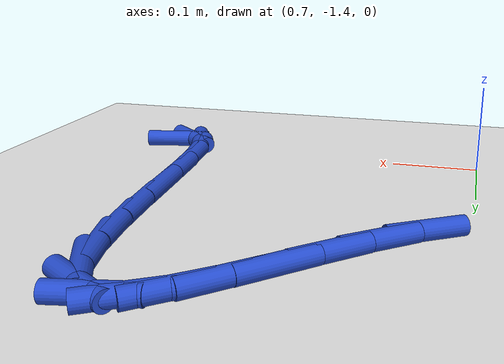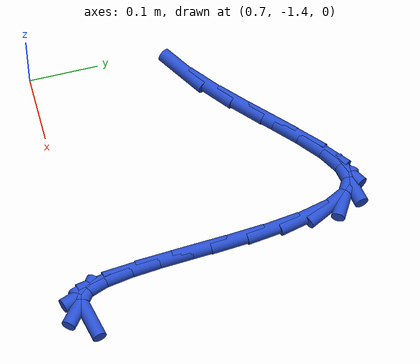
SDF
<sdf version="1.6">
 <world name="default">
  <model name="ground_plane">
   <static>1</static>
   <link name="link">
    <collision name="collision">
     <geometry><plane><normal>0 0 1</normal><size>100 100</size></plane></geometry>
     <surface><friction><ode><mu>100</mu><mu2>50</mu2></ode></friction></surface>
    </collision>
    <visual name="visual">
     <cast_shadows>0</cast_shadows>
     <geometry><plane><normal>0 0 1</normal><size>100 100</size></plane></geometry>
     <material>
      <script><uri>file://media/materials/scripts/gazebo.material</uri><name>Gazebo/WhiteGlow</name></script>
     </material>
    </visual>
   </link>
  </model>
  <model name="line">
   <link name="link_175">
    <pose>1.0909737369133736 -1.4066409125415156 0.01 0 1.57 0.20640165686629325</pose>
    <collision name="collision">
     <geometry><cylinder><radius>0.01</radius><length>0.08</length></cylinder></geometry>
    </collision>
    <visual name="visual">
     <material>
      <script><name>Gazebo/Blue</name><uri>file://media/materials/scripts/gazebo.material</uri></script>
     </material>
     <geometry><cylinder><radius>0.01</radius><length>0.08</length></cylinder></geometry>
    </visual>
   </link>
   <link name="link_176">
    <pose>1.071858057479476 -1.4106434203361446 0.01 0 1.57 -0.6833178603424117</pose>
    <collision name="collision">
     <geometry><cylinder><radius>0.01</radius><length>0.08</length></cylinder></geometry>
    </collision>
    <visual name="visual">
     <material>
      <script><name>Gazebo/Blue</name><uri>file://media/materials/scripts/gazebo.material</uri></script>
     </material>
     <geometry><cylinder><radius>0.01</radius><length>0.08</length></cylinder></geometry>
    </visual>
   </link>
   <link name="link_177">
    <pose>1.0574892772879605 -1.3989448814129524 0.01 0 1.57 -1.2158128619594564</pose>
    <collision name="collision">
     <geometry><cylinder><radius>0.01</radius><length>0.08</length></cylinder></geometry>
    </collision>
    <visual name="visual">
     <material>
      <script><name>Gazebo/Blue</name><uri>file://media/materials/scripts/gazebo.material</uri></script>
     </material>
     <geometry><cylinder><radius>0.01</radius><length>0.08</length></cylinder></geometry>
    </visual>
   </link>
   <link name="link_178">
    <pose>1.0475028477304005 -1.3720045037988085 0.01 0 1.57 -1.4010637667459271</pose>
    <collision name="collision">
     <geometry><cylinder><radius>0.01</radius><length>0.08</length></cylinder></geometry>
    </collision>
    <visual name="visual">
     <material>
      <script><name>Gazebo/Blue</name><uri>file://media/materials/scripts/gazebo.material</uri></script>
     </material>
     <geometry><cylinder><radius>0.01</radius><length>0.08</length></cylinder></geometry>
    </visual>
   </link>
   <link name="link_179">
    <pose>1.0408439246545904 -1.3331501203652198 0.01 0 1.57 -1.4779076347736662</pose>
    <collision name="collision">
     <geometry><cylinder><radius>0.01</radius><length>0.08</length></cylinder></geometry>
    </collision>
    <visual name="visual">
     <material>
      <script><name>Gazebo/Blue</name><uri>file://media/materials/scripts/gazebo.material</uri></script>
     </material>
     <geometry><cylinder><radius>0.01</radius><length>0.08</length></cylinder></geometry>
    </visual>
   </link>
   <link name="link_180">
    <pose>1.0364337666836339 -1.285808872422065 0.01 0 1.57 -1.5090414737957802</pose>
    <collision name="collision">
     <geometry><cylinder><radius>0.01</radius><length>0.08</length></cylinder></geometry>
    </collision>
    <visual name="visual">
     <material>
      <script><name>Gazebo/Blue</name><uri>file://media/materials/scripts/gazebo.material</uri></script>
     </material>
     <geometry><cylinder><radius>0.01</radius><length>0.08</length></cylinder></geometry>
    </visual>
   </link>
   <link name="link_181">
    <pose>1.0331936324406326 -1.2334079012792212 0.01 0 1.57 -1.5125863002289286</pose>
    <collision name="collision">
     <geometry><cylinder><radius>0.01</radius><length>0.08</length></cylinder></geometry>
    </collision>
    <visual name="visual">
     <material>
      <script><name>Gazebo/Blue</name><uri>file://media/materials/scripts/gazebo.material</uri></script>
     </material>
     <geometry><cylinder><radius>0.01</radius><length>0.08</length></cylinder></geometry>
    </visual>
   </link>
   <link name="link_182">
    <pose>1.0300447805486905 -1.1793743482465666 0.01 0 1.57 -1.4917806580776949</pose>
    <collision name="collision">
     <geometry><cylinder><radius>0.01</radius><length>0.08</length></cylinder></geometry>
    </collision>
    <visual name="visual">
     <material>
      <script><name>Gazebo/Blue</name><uri>file://media/materials/scripts/gazebo.material</uri></script>
     </material>
     <geometry><cylinder><radius>0.01</radius><length>0.08</length></cylinder></geometry>
    </visual>
   </link>
   <link name="link_183">
    <pose>1.0259084696309102 -1.1271353546339782 0.01 0 1.57 -1.4396339051943527</pose>
    <collision name="collision">
     <geometry><cylinder><radius>0.01</radius><length>0.08</length></cylinder></geometry>
    </collision>
    <visual name="visual">
     <material>
      <script><name>Gazebo/Blue</name><uri>file://media/materials/scripts/gazebo.material</uri></script>
     </material>
     <geometry><cylinder><radius>0.01</radius><length>0.08</length></cylinder></geometry>
    </visual>
   </link>
   <link name="link_184">
    <pose>1.0197059583103947 -1.0801180617513328 0.01 0 1.57 -1.3318280991533245</pose>
    <collision name="collision">
     <geometry><cylinder><radius>0.01</radius><length>0.08</length></cylinder></geometry>
    </collision>
    <visual name="visual">
     <material>
      <script><name>Gazebo/Blue</name><uri>file://media/materials/scripts/gazebo.material</uri></script>
     </material>
     <geometry><cylinder><radius>0.01</radius><length>0.08</length></cylinder></geometry>
    </visual>
   </link>
   <link name="link_185">
    <pose>1.010358505210247 -1.0417496109085111 0.01 0 1.57 -1.0943039664662284</pose>
    <collision name="collision">
     <geometry><cylinder><radius>0.01</radius><length>0.08</length></cylinder></geometry>
    </collision>
    <visual name="visual">
     <material>
      <script><name>Gazebo/Blue</name><uri>file://media/materials/scripts/gazebo.material</uri></script>
     </material>
     <geometry><cylinder><radius>0.01</radius><length>0.08</length></cylinder></geometry>
    </visual>
   </link>
   <link name="link_186">
    <pose>0.9967873689535701 -1.015457143415389 0.01 0 1.57 -0.525067579046726</pose>
    <collision name="collision">
     <geometry><cylinder><radius>0.01</radius><length>0.08</length></cylinder></geometry>
    </collision>
    <visual name="visual">
     <material>
      <script><name>Gazebo/Blue</name><uri>file://media/materials/scripts/gazebo.material</uri></script>
     </material>
     <geometry><cylinder><radius>0.01</radius><length>0.08</length></cylinder></geometry>
    </visual>
   </link>
   <link name="link_187">
    <pose>0.9779501600073042 -1.0045445535457607 0.01 0 1.57 0.18949487513947796</pose>
    <collision name="collision">
     <geometry><cylinder><radius>0.01</radius><length>0.08</length></cylinder></geometry>
    </collision>
    <visual name="visual">
     <material>
      <script><name>Gazebo/Blue</name><uri>file://media/materials/scripts/gazebo.material</uri></script>
     </material>
     <geometry><cylinder><radius>0.01</radius><length>0.08</length></cylinder></geometry>
    </visual>
   </link>
   <link name="link_188">
    <pose>0.9537262495197083 -1.0091906046321066 0.01 0 1.57 0.5361227836073424</pose>
    <collision name="collision">
     <geometry><cylinder><radius>0.01</radius><length>0.08</length></cylinder></geometry>
    </collision>
    <visual name="visual">
     <material>
      <script><name>Gazebo/Blue</name><uri>file://media/materials/scripts/gazebo.material</uri></script>
     </material>
     <geometry><cylinder><radius>0.01</radius><length>0.08</length></cylinder></geometry>
    </visual>
   </link>
   <link name="link_189">
    <pose>0.9249670348827725 -1.0262785090557607 0.01 0 1.57 0.6810748531900064</pose>
    <collision name="collision">
     <geometry><cylinder><radius>0.01</radius><length>0.08</length></cylinder></geometry>
    </collision>
    <visual name="visual">
     <material>
      <script><name>Gazebo/Blue</name><uri>file://media/materials/scripts/gazebo.material</uri></script>
     </material>
     <geometry><cylinder><radius>0.01</radius><length>0.08</length></cylinder></geometry>
    </visual>
   </link>
   <link name="link_190">
    <pose>0.8925703273305805 -1.0525341180337358 0.01 0 1.57 0.7410310742661053</pose>
    <collision name="collision">
     <geometry><cylinder><radius>0.01</radius><length>0.08</length></cylinder></geometry>
    </collision>
    <visual name="visual">
     <material>
      <script><name>Gazebo/Blue</name><uri>file://media/materials/scripts/gazebo.material</uri></script>
     </material>
     <geometry><cylinder><radius>0.01</radius><length>0.08</length></cylinder></geometry>
    </visual>
   </link>
   <link name="link_191">
    <pose>0.8574339380972158 -1.0846832827830428 0.01 0 1.57 0.754609491116201</pose>
    <collision name="collision">
     <geometry><cylinder><radius>0.01</radius><length>0.08</length></cylinder></geometry>
    </collision>
    <visual name="visual">
     <material>
      <script><name>Gazebo/Blue</name><uri>file://media/materials/scripts/gazebo.material</uri></script>
     </material>
     <geometry><cylinder><radius>0.01</radius><length>0.08</length></cylinder></geometry>
    </visual>
   </link>
   <link name="link_192">
    <pose>0.8204556784167627 -1.1194518545206968 0.01 0 1.57 0.7325782039174163</pose>
    <collision name="collision">
     <geometry><cylinder><radius>0.01</radius><length>0.08</length></cylinder></geometry>
    </collision>
    <visual name="visual">
     <material>
      <script><name>Gazebo/Blue</name><uri>file://media/materials/scripts/gazebo.material</uri></script>
     </material>
     <geometry><cylinder><radius>0.01</radius><length>0.08</length></cylinder></geometry>
    </visual>
   </link>
   <link name="link_193">
    <pose>0.7825333595233072 -1.1535656844637079 0.01 0 1.57 0.6716835664115463</pose>
    <collision name="collision">
     <geometry><cylinder><radius>0.01</radius><length>0.08</length></cylinder></geometry>
    </collision>
    <visual name="visual">
     <material>
      <script><name>Gazebo/Blue</name><uri>file://media/materials/scripts/gazebo.material</uri></script>
     </material>
     <geometry><cylinder><radius>0.01</radius><length>0.08</length></cylinder></geometry>
    </visual>
   </link>
   <link name="link_194">
    <pose>0.7445647926509321 -1.1837506238290896 0.01 0 1.57 0.5558503848318719</pose>
    <collision name="collision">
     <geometry><cylinder><radius>0.01</radius><length>0.08</length></cylinder></geometry>
    </collision>
    <visual name="visual">
     <material>
      <script><name>Gazebo/Blue</name><uri>file://media/materials/scripts/gazebo.material</uri></script>
     </material>
     <geometry><cylinder><radius>0.01</radius><length>0.08</length></cylinder></geometry>
    </visual>
   </link>
  </model>
 </world>
</sdf>
